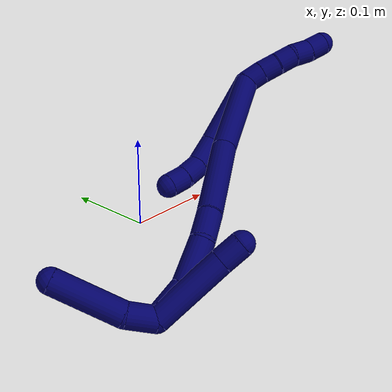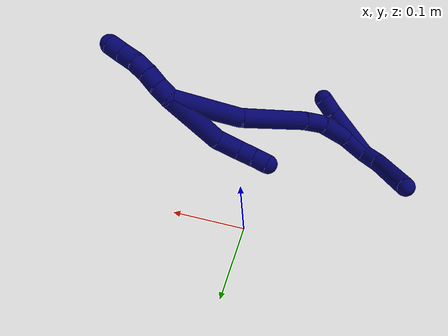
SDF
<sdf version="1.7">
 <world name="default">
  <model name="7">
   <static>0</static>
   <link name="7">
    <collision name="collision-cylinder-e_1_2_8">
     <pose>-0.003744 -0.016867 -0.034075 2.68195 -0.098146 -0.413841</pose>
     <geometry><cylinder><radius>0.0125</radius><length>0.07641</length></cylinder></geometry>
     <surface>
      <friction><ode><mu>1.16</mu><mu2>1.16</mu2><slip1>0</slip1><slip2>0</slip2></ode></friction>
      <contact><ode><kp>1e+06</kp><kd>1</kd><max_vel>0</max_vel><min_depth>0.001</min_depth></ode></contact>
     </surface>
    </collision>
    <visual name="visual-cylinder-e_1_2_8">
     <pose>-0.003744 -0.016867 -0.034075 2.68195 -0.098146 -0.413841</pose>
     <geometry><cylinder><radius>0.0125</radius><length>0.07641</length></cylinder></geometry>
     <material><ambient>0.003922 0 0.403922 1</ambient></material>
    </visual>
    <collision name="collision-cylinder-e_2_8_9">
     <pose>-0.012728 -0.038917 -0.081924 2.78166 -0.342098 -1.51896</pose>
     <geometry><cylinder><radius>0.0125</radius><length>0.031244</length></cylinder></geometry>
     <surface>
      <friction><ode><mu>1.16</mu><mu2>1.16</mu2><slip1>0</slip1><slip2>0</slip2></ode></friction>
      <contact><ode><kp>1e+06</kp><kd>1</kd><max_vel>0</max_vel><min_depth>0.001</min_depth></ode></contact>
     </surface>
    </collision>
    <visual name="visual-cylinder-e_2_8_9">
     <pose>-0.012728 -0.038917 -0.081924 2.78166 -0.342098 -1.51896</pose>
     <geometry><cylinder><radius>0.0125</radius><length>0.031244</length></cylinder></geometry>
     <material><ambient>0.003922 0 0.403922 1</ambient></material>
    </visual>
    <collision name="collision-cylinder-e_3_9_10">
     <pose>-0.02182 -0.0445 -0.10605 3.103 -0.355869 -2.9278</pose>
     <geometry><cylinder><radius>0.0125</radius><length>0.022106</length></cylinder></geometry>
     <surface>
      <friction><ode><mu>1.16</mu><mu2>1.16</mu2><slip1>0</slip1><slip2>0</slip2></ode></friction>
      <contact><ode><kp>1e+06</kp><kd>1</kd><max_vel>0</max_vel><min_depth>0.001</min_depth></ode></contact>
     </surface>
    </collision>
    <visual name="visual-cylinder-e_3_9_10">
     <pose>-0.02182 -0.0445 -0.10605 3.103 -0.355869 -2.9278</pose>
     <geometry><cylinder><radius>0.0125</radius><length>0.022106</length></cylinder></geometry>
     <material><ambient>0.003922 0 0.403922 1</ambient></material>
    </visual>
    <collision name="collision-cylinder-e_4_10_6">
     <pose>-0.028771 -0.043636 -0.125953 -3.00997 -0.311336 2.34644</pose>
     <geometry><cylinder><radius>0.0125</radius><length>0.02024</length></cylinder></geometry>
     <surface>
      <friction><ode><mu>1.16</mu><mu2>1.16</mu2><slip1>0</slip1><slip2>0</slip2></ode></friction>
      <contact><ode><kp>1e+06</kp><kd>1</kd><max_vel>0</max_vel><min_depth>0.001</min_depth></ode></contact>
     </surface>
    </collision>
    <visual name="visual-cylinder-e_4_10_6">
     <pose>-0.028771 -0.043636 -0.125953 -3.00997 -0.311336 2.34644</pose>
     <geometry><cylinder><radius>0.0125</radius><length>0.02024</length></cylinder></geometry>
     <material><ambient>0.003922 0 0.403922 1</ambient></material>
    </visual>
    <collision name="collision-cylinder-e_1_2_11">
     <pose>-0.000112 0.00015 0.009998 -0.015015 -0.011217 8.4e-05</pose>
     <geometry><cylinder><radius>0.0125</radius><length>0.02</length></cylinder></geometry>
     <surface>
      <friction><ode><mu>1.16</mu><mu2>1.16</mu2><slip1>0</slip1><slip2>0</slip2></ode></friction>
      <contact><ode><kp>1e+06</kp><kd>1</kd><max_vel>0</max_vel><min_depth>0.001</min_depth></ode></contact>
     </surface>
    </collision>
    <visual name="visual-cylinder-e_1_2_11">
     <pose>-0.000112 0.00015 0.009998 -0.015015 -0.011217 8.4e-05</pose>
     <geometry><cylinder><radius>0.0125</radius><length>0.02</length></cylinder></geometry>
     <material><ambient>0.003922 0 0.403922 1</ambient></material>
    </visual>
    <collision name="collision-cylinder-e_2_11_12">
     <pose>-0.001182 -0.000328 0.029931 0.063178 -0.095962 -0.003035</pose>
     <geometry><cylinder><radius>0.0125</radius><length>0.02</length></cylinder></geometry>
     <surface>
      <friction><ode><mu>1.16</mu><mu2>1.16</mu2><slip1>0</slip1><slip2>0</slip2></ode></friction>
      <contact><ode><kp>1e+06</kp><kd>1</kd><max_vel>0</max_vel><min_depth>0.001</min_depth></ode></contact>
     </surface>
    </collision>
    <visual name="visual-cylinder-e_2_11_12">
     <pose>-0.001182 -0.000328 0.029931 0.063178 -0.095962 -0.003035</pose>
     <geometry><cylinder><radius>0.0125</radius><length>0.02</length></cylinder></geometry>
     <material><ambient>0.003922 0 0.403922 1</ambient></material>
    </visual>
    <collision name="collision-cylinder-e_3_12_13">
     <pose>-0.002004 -0.001699 0.049836 0.074284 0.013676 0.000508</pose>
     <geometry><cylinder><radius>0.0125</radius><length>0.02</length></cylinder></geometry>
     <surface>
      <friction><ode><mu>1.16</mu><mu2>1.16</mu2><slip1>0</slip1><slip2>0</slip2></ode></friction>
      <contact><ode><kp>1e+06</kp><kd>1</kd><max_vel>0</max_vel><min_depth>0.001</min_depth></ode></contact>
     </surface>
    </collision>
    <visual name="visual-cylinder-e_3_12_13">
     <pose>-0.002004 -0.001699 0.049836 0.074284 0.013676 0.000508</pose>
     <geometry><cylinder><radius>0.0125</radius><length>0.02</length></cylinder></geometry>
     <material><ambient>0.003922 0 0.403922 1</ambient></material>
    </visual>
    <collision name="collision-cylinder-e_4_13_14">
     <pose>-0.000241 -0.005018 0.069332 0.264224 0.163356 0.021755</pose>
     <geometry><cylinder><radius>0.0125</radius><length>0.02</length></cylinder></geometry>
     <surface>
      <friction><ode><mu>1.16</mu><mu2>1.16</mu2><slip1>0</slip1><slip2>0</slip2></ode></friction>
      <contact><ode><kp>1e+06</kp><kd>1</kd><max_vel>0</max_vel><min_depth>0.001</min_depth></ode></contact>
     </surface>
    </collision>
    <visual name="visual-cylinder-e_4_13_14">
     <pose>-0.000241 -0.005018 0.069332 0.264224 0.163356 0.021755</pose>
     <geometry><cylinder><radius>0.0125</radius><length>0.02</length></cylinder></geometry>
     <material><ambient>0.003922 0 0.403922 1</ambient></material>
    </visual>
    <collision name="collision-cylinder-e_5_14_5">
     <pose>0.002946 -0.008604 0.088682 0.102422 0.156727 0.00805</pose>
     <geometry><cylinder><radius>0.0125</radius><length>0.02</length></cylinder></geometry>
     <surface>
      <friction><ode><mu>1.16</mu><mu2>1.16</mu2><slip1>0</slip1><slip2>0</slip2></ode></friction>
      <contact><ode><kp>1e+06</kp><kd>1</kd><max_vel>0</max_vel><min_depth>0.001</min_depth></ode></contact>
     </surface>
    </collision>
    <visual name="visual-cylinder-e_5_14_5">
     <pose>0.002946 -0.008604 0.088682 0.102422 0.156727 0.00805</pose>
     <geometry><cylinder><radius>0.0125</radius><length>0.02</length></cylinder></geometry>
     <material><ambient>0.003922 0 0.403922 1</ambient></material>
    </visual>
    <collision name="collision-cylinder-e_1_2_15">
     <pose>-0.024396 -0.019137 -0.034812 2.63897 -0.55074 -1.66643</pose>
     <geometry><cylinder><radius>0.0125</radius><length>0.093238</length></cylinder></geometry>
     <surface>
      <friction><ode><mu>1.16</mu><mu2>1.16</mu2><slip1>0</slip1><slip2>0</slip2></ode></friction>
      <contact><ode><kp>1e+06</kp><kd>1</kd><max_vel>0</max_vel><min_depth>0.001</min_depth></ode></contact>
     </surface>
    </collision>
    <visual name="visual-cylinder-e_1_2_15">
     <pose>-0.024396 -0.019137 -0.034812 2.63897 -0.55074 -1.66643</pose>
     <geometry><cylinder><radius>0.0125</radius><length>0.093238</length></cylinder></geometry>
     <material><ambient>0.003922 0 0.403922 1</ambient></material>
    </visual>
    <collision name="collision-cylinder-e_2_15_16">
     <pose>-0.08023 -0.055224 -0.098832 2.61577 -0.749653 -1.94165</pose>
     <geometry><cylinder><radius>0.0125</radius><length>0.092275</length></cylinder></geometry>
     <surface>
      <friction><ode><mu>1.16</mu><mu2>1.16</mu2><slip1>0</slip1><slip2>0</slip2></ode></friction>
      <contact><ode><kp>1e+06</kp><kd>1</kd><max_vel>0</max_vel><min_depth>0.001</min_depth></ode></contact>
     </surface>
    </collision>
    <visual name="visual-cylinder-e_2_15_16">
     <pose>-0.08023 -0.055224 -0.098832 2.61577 -0.749653 -1.94165</pose>
     <geometry><cylinder><radius>0.0125</radius><length>0.092275</length></cylinder></geometry>
     <material><ambient>0.003922 0 0.403922 1</ambient></material>
    </visual>
    <collision name="collision-cylinder-e_3_16_17">
     <pose>-0.120663 -0.078374 -0.138686 2.61423 -0.630624 -1.75887</pose>
     <geometry><cylinder><radius>0.0125</radius><length>0.03051</length></cylinder></geometry>
     <surface>
      <friction><ode><mu>1.16</mu><mu2>1.16</mu2><slip1>0</slip1><slip2>0</slip2></ode></friction>
      <contact><ode><kp>1e+06</kp><kd>1</kd><max_vel>0</max_vel><min_depth>0.001</min_depth></ode></contact>
     </surface>
    </collision>
    <visual name="visual-cylinder-e_3_16_17">
     <pose>-0.120663 -0.078374 -0.138686 2.61423 -0.630624 -1.75887</pose>
     <geometry><cylinder><radius>0.0125</radius><length>0.03051</length></cylinder></geometry>
     <material><ambient>0.003922 0 0.403922 1</ambient></material>
    </visual>
    <collision name="collision-cylinder-e_4_17_18">
     <pose>-0.137338 -0.095573 -0.16822 2.61424 -0.337918 -1.12707</pose>
     <geometry><cylinder><radius>0.0125</radius><length>0.046332</length></cylinder></geometry>
     <surface>
      <friction><ode><mu>1.16</mu><mu2>1.16</mu2><slip1>0</slip1><slip2>0</slip2></ode></friction>
      <contact><ode><kp>1e+06</kp><kd>1</kd><max_vel>0</max_vel><min_depth>0.001</min_depth></ode></contact>
     </surface>
    </collision>
    <visual name="visual-cylinder-e_4_17_18">
     <pose>-0.137338 -0.095573 -0.16822 2.61424 -0.337918 -1.12707</pose>
     <geometry><cylinder><radius>0.0125</radius><length>0.046332</length></cylinder></geometry>
     <material><ambient>0.003922 0 0.403922 1</ambient></material>
    </visual>
    <collision name="collision-cylinder-e_5_18_1">
     <pose>-0.147886 -0.110952 -0.205186 2.9039 -0.152955 -1.14105</pose>
     <geometry><cylinder><radius>0.0125</radius><length>0.037646</length></cylinder></geometry>
     <surface>
      <friction><ode><mu>1.16</mu><mu2>1.16</mu2><slip1>0</slip1><slip2>0</slip2></ode></friction>
      <contact><ode><kp>1e+06</kp><kd>1</kd><max_vel>0</max_vel><min_depth>0.001</min_depth></ode></contact>
     </surface>
    </collision>
    <visual name="visual-cylinder-e_5_18_1">
     <pose>-0.147886 -0.110952 -0.205186 2.9039 -0.152955 -1.14105</pose>
     <geometry><cylinder><radius>0.0125</radius><length>0.037646</length></cylinder></geometry>
     <material><ambient>0.003922 0 0.403922 1</ambient></material>
    </visual>
    <collision name="collision-cylinder-e_1_1_19">
     <pose>-0.153785 -0.109125 -0.185845 -0.164376 -0.079753 0.006573</pose>
     <geometry><cylinder><radius>0.0125</radius><length>0.076108</length></cylinder></geometry>
     <surface>
      <friction><ode><mu>1.16</mu><mu2>1.16</mu2><slip1>0</slip1><slip2>0</slip2></ode></friction>
      <contact><ode><kp>1e+06</kp><kd>1</kd><max_vel>0</max_vel><min_depth>0.001</min_depth></ode></contact>
     </surface>
    </collision>
    <visual name="visual-cylinder-e_1_1_19">
     <pose>-0.153785 -0.109125 -0.185845 -0.164376 -0.079753 0.006573</pose>
     <geometry><cylinder><radius>0.0125</radius><length>0.076108</length></cylinder></geometry>
     <material><ambient>0.003922 0 0.403922 1</ambient></material>
    </visual>
    <collision name="collision-cylinder-e_2_19_4">
     <pose>-0.158523 -0.101152 -0.136732 -0.149937 -0.143302 0.010782</pose>
     <geometry><cylinder><radius>0.0125</radius><length>0.023892</length></cylinder></geometry>
     <surface>
      <friction><ode><mu>1.16</mu><mu2>1.16</mu2><slip1>0</slip1><slip2>0</slip2></ode></friction>
      <contact><ode><kp>1e+06</kp><kd>1</kd><max_vel>0</max_vel><min_depth>0.001</min_depth></ode></contact>
     </surface>
    </collision>
    <visual name="visual-cylinder-e_2_19_4">
     <pose>-0.158523 -0.101152 -0.136732 -0.149937 -0.143302 0.010782</pose>
     <geometry><cylinder><radius>0.0125</radius><length>0.023892</length></cylinder></geometry>
     <material><ambient>0.003922 0 0.403922 1</ambient></material>
    </visual>
    <collision name="collision-cylinder-e_1_1_20">
     <pose>-0.150637 -0.105312 -0.233952 -2.3883 0.00796 -0.020124</pose>
     <geometry><cylinder><radius>0.0125</radius><length>0.0293</length></cylinder></geometry>
     <surface>
      <friction><ode><mu>1.16</mu><mu2>1.16</mu2><slip1>0</slip1><slip2>0</slip2></ode></friction>
      <contact><ode><kp>1e+06</kp><kd>1</kd><max_vel>0</max_vel><min_depth>0.001</min_depth></ode></contact>
     </surface>
    </collision>
    <visual name="visual-cylinder-e_1_1_20">
     <pose>-0.150637 -0.105312 -0.233952 -2.3883 0.00796 -0.020124</pose>
     <geometry><cylinder><radius>0.0125</radius><length>0.0293</length></cylinder></geometry>
     <material><ambient>0.003922 0 0.403922 1</ambient></material>
    </visual>
    <collision name="collision-cylinder-e_2_20_3">
     <pose>-0.144002 -0.065852 -0.263091 -2.13071 0.185453 -0.332975</pose>
     <geometry><cylinder><radius>0.0125</radius><length>0.0707</length></cylinder></geometry>
     <surface>
      <friction><ode><mu>1.16</mu><mu2>1.16</mu2><slip1>0</slip1><slip2>0</slip2></ode></friction>
      <contact><ode><kp>1e+06</kp><kd>1</kd><max_vel>0</max_vel><min_depth>0.001</min_depth></ode></contact>
     </surface>
    </collision>
    <visual name="visual-cylinder-e_2_20_3">
     <pose>-0.144002 -0.065852 -0.263091 -2.13071 0.185453 -0.332975</pose>
     <geometry><cylinder><radius>0.0125</radius><length>0.0707</length></cylinder></geometry>
     <material><ambient>0.003922 0 0.403922 1</ambient></material>
    </visual>
    <collision name="collision-sphere-3">
     <pose>-0.137484 -0.036414 -0.281544 0 -0 0</pose>
     <geometry><sphere><radius>0.0125</radius></sphere></geometry>
     <surface>
      <friction><ode><mu>1.16</mu><mu2>1.16</mu2><slip1>0</slip1><slip2>0</slip2></ode></friction>
      <contact><ode><kp>1e+06</kp><kd>1</kd><max_vel>0</max_vel><min_depth>0.001</min_depth></ode></contact>
     </surface>
    </collision>
    <visual name="visual-sphere-3">
     <pose>-0.137484 -0.036414 -0.281544 0 -0 0</pose>
     <geometry><sphere><radius>0.0125</radius></sphere></geometry>
     <material><ambient>0.003922 0 0.403922 1</ambient></material>
    </visual>
    <collision name="collision-sphere-20">
     <pose>-0.15052 -0.095291 -0.244638 0 -0 0</pose>
     <geometry><sphere><radius>0.0125</radius></sphere></geometry>
     <surface>
      <friction><ode><mu>1.16</mu><mu2>1.16</mu2><slip1>0</slip1><slip2>0</slip2></ode></friction>
      <contact><ode><kp>1e+06</kp><kd>1</kd><max_vel>0</max_vel><min_depth>0.001</min_depth></ode></contact>
     </surface>
    </collision>
    <visual name="visual-sphere-20">
     <pose>-0.15052 -0.095291 -0.244638 0 -0 0</pose>
     <geometry><sphere><radius>0.0125</radius></sphere></geometry>
     <material><ambient>0.003922 0 0.403922 1</ambient></material>
    </visual>
    <collision name="collision-sphere-4">
     <pose>-0.160229 -0.099386 -0.125041 0 -0 0</pose>
     <geometry><sphere><radius>0.0125</radius></sphere></geometry>
     <surface>
      <friction><ode><mu>1.16</mu><mu2>1.16</mu2><slip1>0</slip1><slip2>0</slip2></ode></friction>
      <contact><ode><kp>1e+06</kp><kd>1</kd><max_vel>0</max_vel><min_depth>0.001</min_depth></ode></contact>
     </surface>
    </collision>
    <visual name="visual-sphere-4">
     <pose>-0.160229 -0.099386 -0.125041 0 -0 0</pose>
     <geometry><sphere><radius>0.0125</radius></sphere></geometry>
     <material><ambient>0.003922 0 0.403922 1</ambient></material>
    </visual>
    <collision name="collision-sphere-11">
     <pose>-0.000224 0.0003 0.019996 0 -0 0</pose>
     <geometry><sphere><radius>0.0125</radius></sphere></geometry>
     <surface>
      <friction><ode><mu>1.16</mu><mu2>1.16</mu2><slip1>0</slip1><slip2>0</slip2></ode></friction>
      <contact><ode><kp>1e+06</kp><kd>1</kd><max_vel>0</max_vel><min_depth>0.001</min_depth></ode></contact>
     </surface>
    </collision>
    <visual name="visual-sphere-11">
     <pose>-0.000224 0.0003 0.019996 0 -0 0</pose>
     <geometry><sphere><radius>0.0125</radius></sphere></geometry>
     <material><ambient>0.003922 0 0.403922 1</ambient></material>
    </visual>
    <collision name="collision-sphere-6">
     <pose>-0.031871 -0.042372 -0.135503 0 -0 0</pose>
     <geometry><sphere><radius>0.0125</radius></sphere></geometry>
     <surface>
      <friction><ode><mu>1.16</mu><mu2>1.16</mu2><slip1>0</slip1><slip2>0</slip2></ode></friction>
      <contact><ode><kp>1e+06</kp><kd>1</kd><max_vel>0</max_vel><min_depth>0.001</min_depth></ode></contact>
     </surface>
    </collision>
    <visual name="visual-sphere-6">
     <pose>-0.031871 -0.042372 -0.135503 0 -0 0</pose>
     <geometry><sphere><radius>0.0125</radius></sphere></geometry>
     <material><ambient>0.003922 0 0.403922 1</ambient></material>
    </visual>
    <collision name="collision-sphere-10">
     <pose>-0.02567 -0.0449 -0.116403 0 -0 0</pose>
     <geometry><sphere><radius>0.0125</radius></sphere></geometry>
     <surface>
      <friction><ode><mu>1.16</mu><mu2>1.16</mu2><slip1>0</slip1><slip2>0</slip2></ode></friction>
      <contact><ode><kp>1e+06</kp><kd>1</kd><max_vel>0</max_vel><min_depth>0.001</min_depth></ode></contact>
     </surface>
    </collision>
    <visual name="visual-sphere-10">
     <pose>-0.02567 -0.0449 -0.116403 0 -0 0</pose>
     <geometry><sphere><radius>0.0125</radius></sphere></geometry>
     <material><ambient>0.003922 0 0.403922 1</ambient></material>
    </visual>
    <collision name="collision-sphere-9">
     <pose>-0.017969 -0.044101 -0.095697 0 -0 0</pose>
     <geometry><sphere><radius>0.0125</radius></sphere></geometry>
     <surface>
      <friction><ode><mu>1.16</mu><mu2>1.16</mu2><slip1>0</slip1><slip2>0</slip2></ode></friction>
      <contact><ode><kp>1e+06</kp><kd>1</kd><max_vel>0</max_vel><min_depth>0.001</min_depth></ode></contact>
     </surface>
    </collision>
    <visual name="visual-sphere-9">
     <pose>-0.017969 -0.044101 -0.095697 0 -0 0</pose>
     <geometry><sphere><radius>0.0125</radius></sphere></geometry>
     <material><ambient>0.003922 0 0.403922 1</ambient></material>
    </visual>
    <collision name="collision-sphere-2">
     <geometry><sphere><radius>0.0125</radius></sphere></geometry>
     <surface>
      <friction><ode><mu>1.16</mu><mu2>1.16</mu2><slip1>0</slip1><slip2>0</slip2></ode></friction>
      <contact><ode><kp>1e+06</kp><kd>1</kd><max_vel>0</max_vel><min_depth>0.001</min_depth></ode></contact>
     </surface>
    </collision>
    <visual name="visual-sphere-2">
     <geometry><sphere><radius>0.0125</radius></sphere></geometry>
     <material><ambient>0.003922 0 0.403922 1</ambient></material>
    </visual>
    <collision name="collision-sphere-19">
     <pose>-0.156817 -0.102918 -0.148423 0 -0 0</pose>
     <geometry><sphere><radius>0.0125</radius></sphere></geometry>
     <surface>
      <friction><ode><mu>1.16</mu><mu2>1.16</mu2><slip1>0</slip1><slip2>0</slip2></ode></friction>
      <contact><ode><kp>1e+06</kp><kd>1</kd><max_vel>0</max_vel><min_depth>0.001</min_depth></ode></contact>
     </surface>
    </collision>
    <visual name="visual-sphere-19">
     <pose>-0.156817 -0.102918 -0.148423 0 -0 0</pose>
     <geometry><sphere><radius>0.0125</radius></sphere></geometry>
     <material><ambient>0.003922 0 0.403922 1</ambient></material>
    </visual>
    <collision name="collision-sphere-8">
     <pose>-0.007487 -0.033734 -0.06815 0 -0 0</pose>
     <geometry><sphere><radius>0.0125</radius></sphere></geometry>
     <surface>
      <friction><ode><mu>1.16</mu><mu2>1.16</mu2><slip1>0</slip1><slip2>0</slip2></ode></friction>
      <contact><ode><kp>1e+06</kp><kd>1</kd><max_vel>0</max_vel><min_depth>0.001</min_depth></ode></contact>
     </surface>
    </collision>
    <visual name="visual-sphere-8">
     <pose>-0.007487 -0.033734 -0.06815 0 -0 0</pose>
     <geometry><sphere><radius>0.0125</radius></sphere></geometry>
     <material><ambient>0.003922 0 0.403922 1</ambient></material>
    </visual>
    <collision name="collision-sphere-12">
     <pose>-0.002141 -0.000957 0.039865 0 -0 0</pose>
     <geometry><sphere><radius>0.0125</radius></sphere></geometry>
     <surface>
      <friction><ode><mu>1.16</mu><mu2>1.16</mu2><slip1>0</slip1><slip2>0</slip2></ode></friction>
      <contact><ode><kp>1e+06</kp><kd>1</kd><max_vel>0</max_vel><min_depth>0.001</min_depth></ode></contact>
     </surface>
    </collision>
    <visual name="visual-sphere-12">
     <pose>-0.002141 -0.000957 0.039865 0 -0 0</pose>
     <geometry><sphere><radius>0.0125</radius></sphere></geometry>
     <material><ambient>0.003922 0 0.403922 1</ambient></material>
    </visual>
    <collision name="collision-sphere-13">
     <pose>-0.001867 -0.002441 0.059808 0 -0 0</pose>
     <geometry><sphere><radius>0.0125</radius></sphere></geometry>
     <surface>
      <friction><ode><mu>1.16</mu><mu2>1.16</mu2><slip1>0</slip1><slip2>0</slip2></ode></friction>
      <contact><ode><kp>1e+06</kp><kd>1</kd><max_vel>0</max_vel><min_depth>0.001</min_depth></ode></contact>
     </surface>
    </collision>
    <visual name="visual-sphere-13">
     <pose>-0.001867 -0.002441 0.059808 0 -0 0</pose>
     <geometry><sphere><radius>0.0125</radius></sphere></geometry>
     <material><ambient>0.003922 0 0.403922 1</ambient></material>
    </visual>
    <collision name="collision-sphere-14">
     <pose>0.001385 -0.007594 0.078857 0 -0 0</pose>
     <geometry><sphere><radius>0.0125</radius></sphere></geometry>
     <surface>
      <friction><ode><mu>1.16</mu><mu2>1.16</mu2><slip1>0</slip1><slip2>0</slip2></ode></friction>
      <contact><ode><kp>1e+06</kp><kd>1</kd><max_vel>0</max_vel><min_depth>0.001</min_depth></ode></contact>
     </surface>
    </collision>
    <visual name="visual-sphere-14">
     <pose>0.001385 -0.007594 0.078857 0 -0 0</pose>
     <geometry><sphere><radius>0.0125</radius></sphere></geometry>
     <material><ambient>0.003922 0 0.403922 1</ambient></material>
    </visual>
    <collision name="collision-sphere-5">
     <pose>0.004507 -0.009614 0.098508 0 -0 0</pose>
     <geometry><sphere><radius>0.0125</radius></sphere></geometry>
     <surface>
      <friction><ode><mu>1.16</mu><mu2>1.16</mu2><slip1>0</slip1><slip2>0</slip2></ode></friction>
      <contact><ode><kp>1e+06</kp><kd>1</kd><max_vel>0</max_vel><min_depth>0.001</min_depth></ode></contact>
     </surface>
    </collision>
    <visual name="visual-sphere-5">
     <pose>0.004507 -0.009614 0.098508 0 -0 0</pose>
     <geometry><sphere><radius>0.0125</radius></sphere></geometry>
     <material><ambient>0.003922 0 0.403922 1</ambient></material>
    </visual>
    <collision name="collision-sphere-15">
     <pose>-0.048793 -0.038274 -0.069625 0 -0 0</pose>
     <geometry><sphere><radius>0.0125</radius></sphere></geometry>
     <surface>
      <friction><ode><mu>1.16</mu><mu2>1.16</mu2><slip1>0</slip1><slip2>0</slip2></ode></friction>
      <contact><ode><kp>1e+06</kp><kd>1</kd><max_vel>0</max_vel><min_depth>0.001</min_depth></ode></contact>
     </surface>
    </collision>
    <visual name="visual-sphere-15">
     <pose>-0.048793 -0.038274 -0.069625 0 -0 0</pose>
     <geometry><sphere><radius>0.0125</radius></sphere></geometry>
     <material><ambient>0.003922 0 0.403922 1</ambient></material>
    </visual>
    <collision name="collision-sphere-16">
     <pose>-0.111668 -0.072173 -0.128039 0 -0 0</pose>
     <geometry><sphere><radius>0.0125</radius></sphere></geometry>
     <surface>
      <friction><ode><mu>1.16</mu><mu2>1.16</mu2><slip1>0</slip1><slip2>0</slip2></ode></friction>
      <contact><ode><kp>1e+06</kp><kd>1</kd><max_vel>0</max_vel><min_depth>0.001</min_depth></ode></contact>
     </surface>
    </collision>
    <visual name="visual-sphere-16">
     <pose>-0.111668 -0.072173 -0.128039 0 -0 0</pose>
     <geometry><sphere><radius>0.0125</radius></sphere></geometry>
     <material><ambient>0.003922 0 0.403922 1</ambient></material>
    </visual>
    <collision name="collision-sphere-17">
     <pose>-0.129658 -0.084574 -0.149333 0 -0 0</pose>
     <geometry><sphere><radius>0.0125</radius></sphere></geometry>
     <surface>
      <friction><ode><mu>1.16</mu><mu2>1.16</mu2><slip1>0</slip1><slip2>0</slip2></ode></friction>
      <contact><ode><kp>1e+06</kp><kd>1</kd><max_vel>0</max_vel><min_depth>0.001</min_depth></ode></contact>
     </surface>
    </collision>
    <visual name="visual-sphere-17">
     <pose>-0.129658 -0.084574 -0.149333 0 -0 0</pose>
     <geometry><sphere><radius>0.0125</radius></sphere></geometry>
     <material><ambient>0.003922 0 0.403922 1</ambient></material>
    </visual>
    <collision name="collision-sphere-18">
     <pose>-0.145018 -0.106572 -0.187106 0 -0 0</pose>
     <geometry><sphere><radius>0.0125</radius></sphere></geometry>
     <surface>
      <friction><ode><mu>1.16</mu><mu2>1.16</mu2><slip1>0</slip1><slip2>0</slip2></ode></friction>
      <contact><ode><kp>1e+06</kp><kd>1</kd><max_vel>0</max_vel><min_depth>0.001</min_depth></ode></contact>
     </surface>
    </collision>
    <visual name="visual-sphere-18">
     <pose>-0.145018 -0.106572 -0.187106 0 -0 0</pose>
     <geometry><sphere><radius>0.0125</radius></sphere></geometry>
     <material><ambient>0.003922 0 0.403922 1</ambient></material>
    </visual>
    <collision name="collision-sphere-1">
     <pose>-0.150753 -0.115333 -0.223266 0 -0 0</pose>
     <geometry><sphere><radius>0.0125</radius></sphere></geometry>
     <surface>
      <friction><ode><mu>1.16</mu><mu2>1.16</mu2><slip1>0</slip1><slip2>0</slip2></ode></friction>
      <contact><ode><kp>1e+06</kp><kd>1</kd><max_vel>0</max_vel><min_depth>0.001</min_depth></ode></contact>
     </surface>
    </collision>
    <visual name="visual-sphere-1">
     <pose>-0.150753 -0.115333 -0.223266 0 -0 0</pose>
     <geometry><sphere><radius>0.0125</radius></sphere></geometry>
     <material><ambient>0.003922 0 0.403922 1</ambient></material>
    </visual>
    <inertial>
     <pose>-0.076182 -0.054695 -0.106777 0 -0 0</pose>
     <mass>0.75</mass>
     <inertia>
      <ixx>-6.9e-05</ixx>
      <ixy>0</ixy>
      <ixz>0</ixz>
      <iyy>-9.2e-05</iyy>
      <iyz>0</iyz>
      <izz>0.000123</izz>
     </inertia>
    </inertial>
   </link>
   <pose>0.102922 -0.064483 0.153706 1.10028 0.344074 0.983644</pose>
  </model>
 </world>
</sdf>
